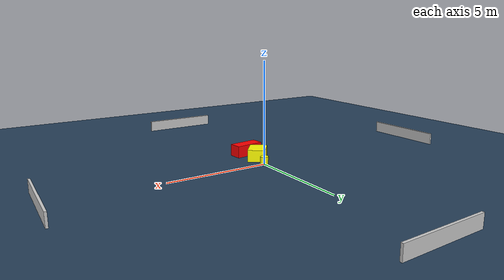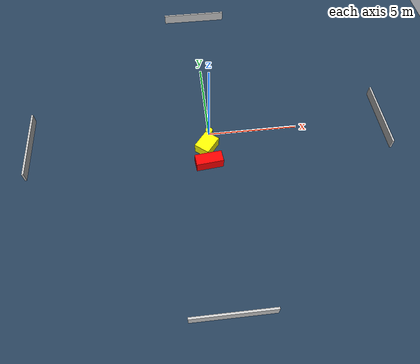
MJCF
<?xml version="1.0" ?>
<mujoco model="generated_environment">
  <option timestep="0.01" integrator="RK4" cone="elliptic"/>
  <default>
    <geom density="1"/>
  </default>
  <asset>
    <texture builtin="gradient" height="3072" name="skybox" rgb1="0.3 0.5 0.7" rgb2="0 0 0" type="skybox" width="512"/>
    <texture builtin="checker" height="300" name="groundplane" rgb1="0.2 0.3 0.4" rgb2="0.1 0.2 0.3" type="2d" width="300"/>
    <material name="groundplane" reflectance="0.2" texrepeat="5 5" texture="groundplane"/>
  </asset>
  <worldbody>
    <light dir="0 0 -1" directional="true" pos="0 0 1.5"/>
    <geom condim="3" friction="0.5 0.005 0.001" material="groundplane" name="floor" pos="0 0 0" size="0 0 0.05" type="plane"/>
    <body name="walls">
      <geom name="wall_1" condim="4" pos="-10.0 0.0 0.3" rgba="0.800000011920929 0.800000011920929 0.800000011920929 1.0" size="0.05 2.0 0.3" type="box"/>
      <geom name="wall_2" condim="4" pos="10.0 0.0 0.3" rgba="0.800000011920929 0.800000011920929 0.800000011920929 1.0" size="0.05 2.0 0.3" type="box"/>
      <geom name="wall_3" condim="4" pos="0.0 -10.0 0.3" rgba="0.800000011920929 0.800000011920929 0.800000011920929 1.0" size="2.0 0.05 0.3" type="box"/>
      <geom name="wall_4" condim="4" pos="0.0 10.0 0.3" rgba="0.800000011920929 0.800000011920929 0.800000011920929 1.0" size="2.0 0.05 0.3" type="box"/>
    </body>
    <body name="robot">
      <joint name="joint_x" type="slide" pos="0 0 0" axis="1 0 0"/>
      <joint name="joint_y" type="slide" pos="0 0 0" axis="0 1 0"/>
      <geom name="robot" type="cylinder" pos="0.0 0.0 0.2" size="0.2 0.2 0.0" mass="5.0" friction="1.0 0.005 0.0001" condim="4" rgba="1.0 1.0 0.0 1.0"/>
    </body>
    <body name="obstacle_1_movable">
      <geom name="obstacle_1_movable" condim="4" pos="-0.21647943242511963 -0.9311025975617231 0.3" euler="0 0 141.2167367744343" friction="0.0 0.005 0.001" rgba="1.0 1.0 0.0 1.0" size="0.4330852138417508 0.5554329566227667 0.3" type="box" mass="0.1"/>
      <joint type="free"/>
    </body>
    <body name="obstacle_2_static">
      <geom name="obstacle_2_static" condim="4" pos="-0.20497376696309272 -1.9892174580135369 0.3" euler="0 0 275.84042556737927" friction="0.0 0.005 0.001" rgba="1.0 0.0 0.0 1.0" size="0.3237883579208299 0.7358804901168499 0.3" type="box"/>
    </body>
  </worldbody>
  <actuator>
    <motor name="actuator_x" joint="joint_x" gear="1" ctrlrange="-1 1"/>
    <motor name="actuator_y" joint="joint_y" gear="1" ctrlrange="-1 1"/>
  </actuator>
</mujoco>
